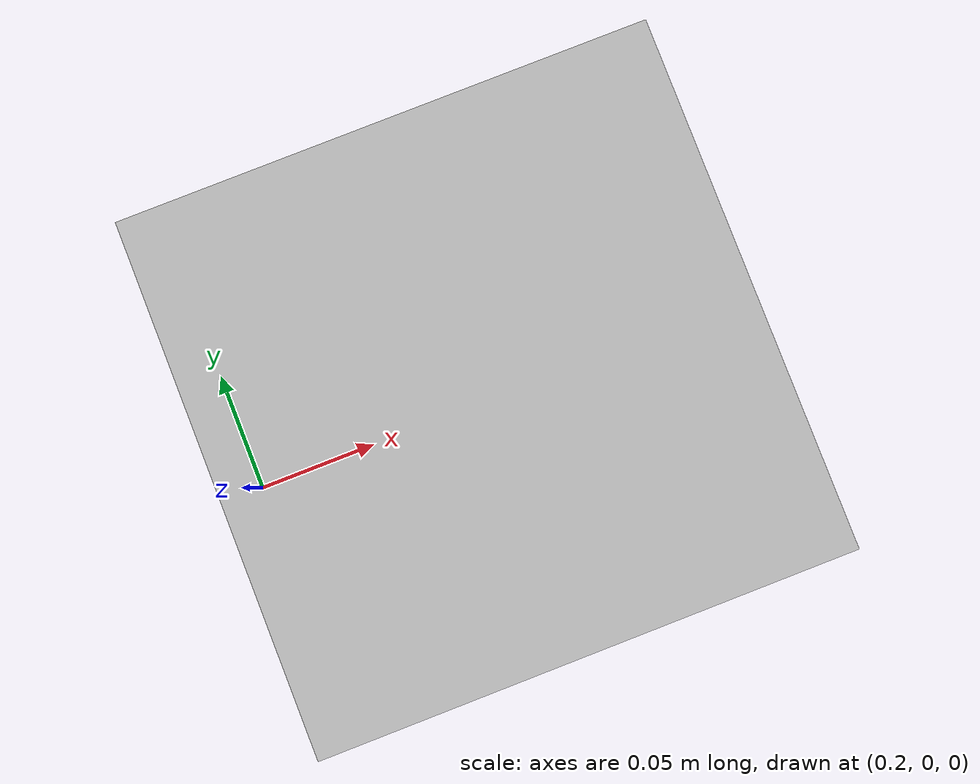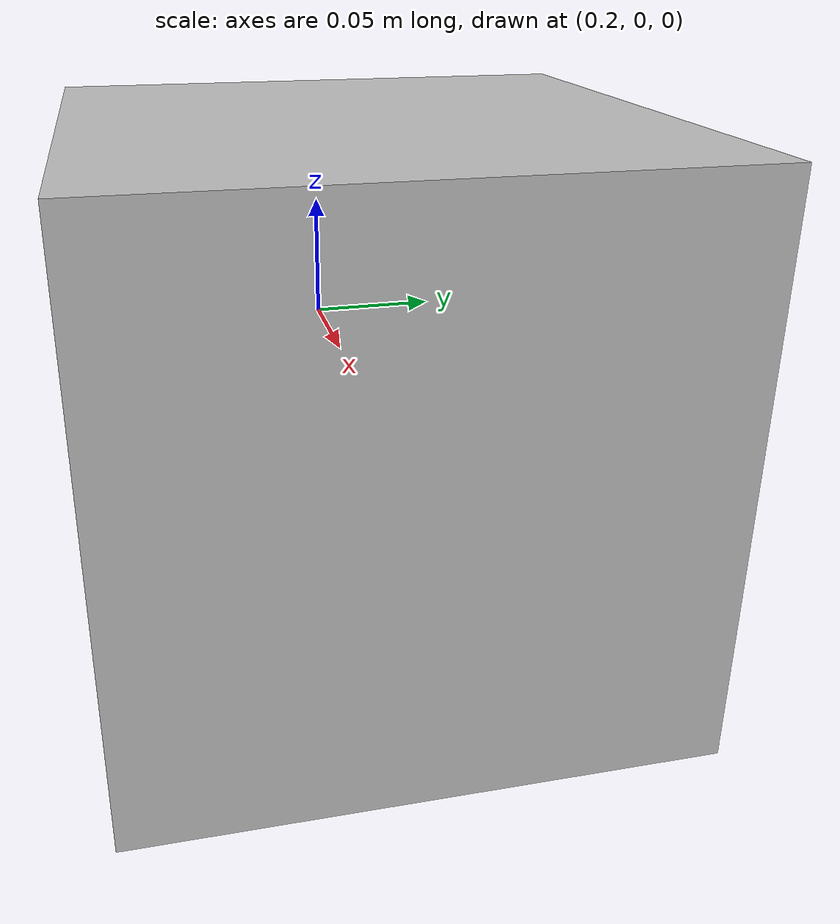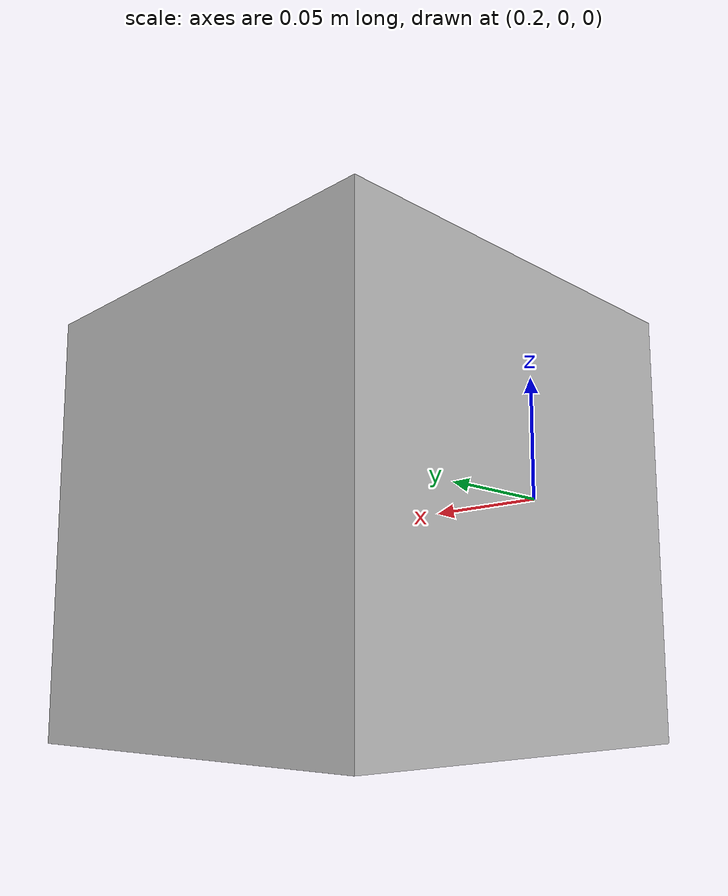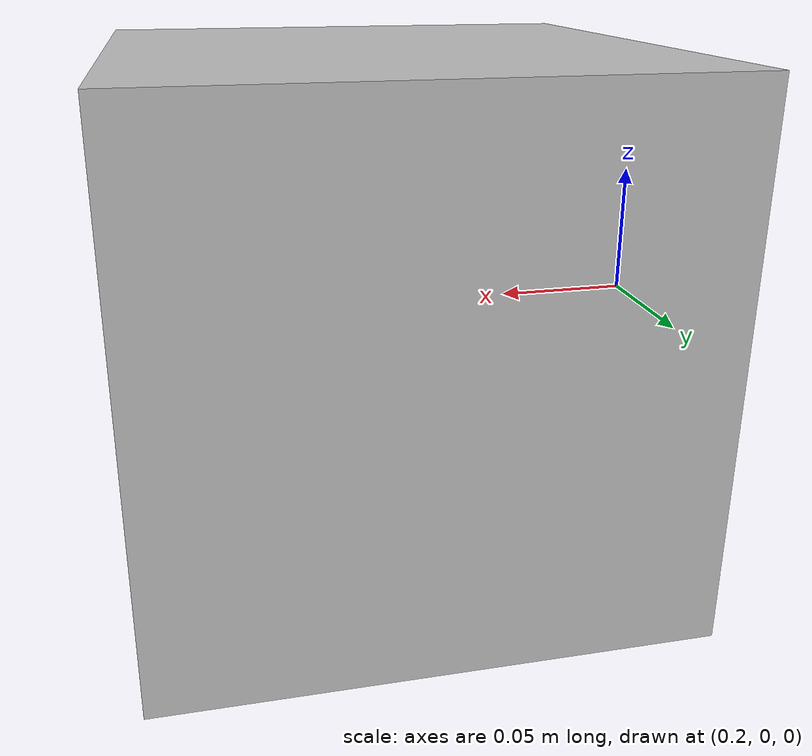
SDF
<?xml version="1.0"?>
<sdf version="1.4">
    <model name="box_model">
        <link name="box">
            <pose>0.3 0.0 0 0 0 0</pose>
            <inertial>
                <pose>0 0 0 0 0 0</pose>
                <inertia>
                    <ixx>0.01</ixx>
                    <ixy>0</ixy>
                    <ixz>0</ixz>
                    <iyy>0.01</iyy>
                    <iyz>0</iyz>
                    <izz>0.01</izz>
                </inertia>
                <mass>1.0</mass>
            </inertial>
            <collision name="collision">
                <geometry>
                    <box>
                        <size>0.2 0.2 0.2</size>
                    </box>
                </geometry>
            </collision>
            <visual name="visual">
                <geometry>
                    <box>
                        <size>0.2 0.2 0.2</size>
                    </box>
                </geometry>
                <material>
                    <script>Gazebo/Purple</script>
                </material>
            </visual>
        </link>
    </model>
</sdf>
